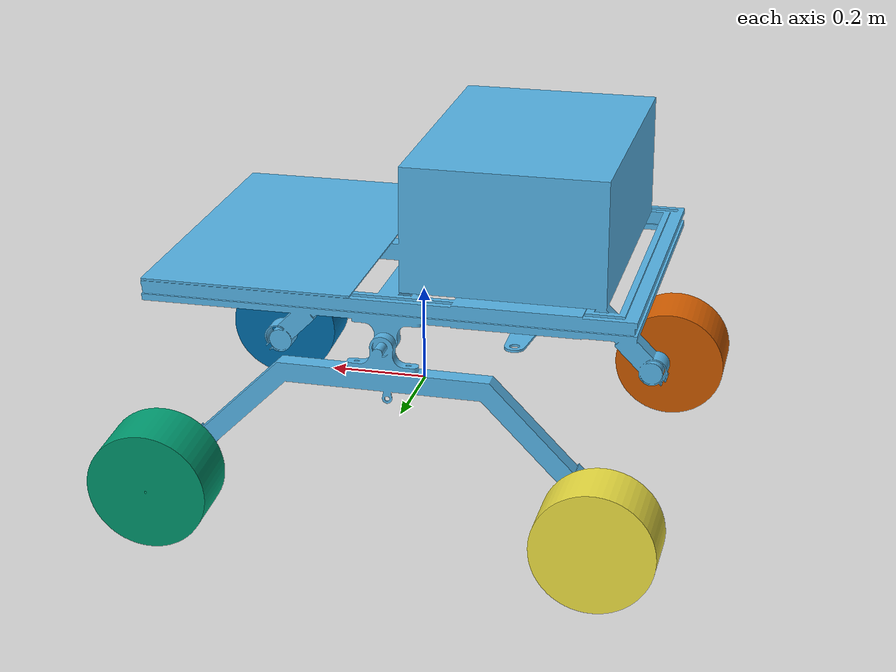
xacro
<?xml version="1.0"?>
<robot xmlns:xacro="http://www.ros.org/wiki/xacro" name="rover">

    <link name="world"/>
    <link name="base">
        <visual>
            <origin rpy="1.57 0 0" xyz="-0.5 0.5 -0.1"/>
            <geometry>
                <mesh filename="package://robot_arm_description/mesh/Body without wheels.STL" scale="0.001 0.001 0.001"/>
            </geometry>
        </visual>
    </link>

    <link name="wheel">
        <visual>
            <origin rpy="0 0 0" xyz="-0.1 -0.1 -0.1"/>
            <geometry>
                <mesh filename="package://robot_arm_description/mesh/temp Wheel.STL" scale="0.001 0.001 0.001"/>
            </geometry>
        </visual>
    </link>

    <link name="wheel2">
        <visual>
            <origin rpy="0 1.57 0" xyz="0 -0.115 0.115"/>
            <geometry>
                <mesh filename="package://robot_arm_description/mesh/temp Wheel.STL" scale="0.001 0.001 0.001"/>
            </geometry>
        </visual>
    </link>

    <link name="wheel3">
        <visual>
            <origin rpy="0 0 0" xyz="-0.1 -0.1 -0.1"/>
            <geometry>
                <mesh filename="package://robot_arm_description/mesh/temp Wheel.STL" scale="0.001 0.001 0.001"/>
            </geometry>
        </visual>
    </link>

    <link name="wheel4">
        <visual>
            <origin rpy="0 0 0" xyz="-0.1 -0.1 -0.1"/>
            <geometry>
                <mesh filename="package://robot_arm_description/mesh/temp Wheel.STL" scale="0.001 0.001 0.001"/>
            </geometry>
        </visual>
    </link>

    <joint name="virtual_joint" type="fixed">
        <parent link="world"/>
        <child link="base"/>
        <origin rpy="0 0 0" xyz="0 0 0.0"/>
    </joint>

    <joint name="wheel_name" type="revolute">
        <parent link="base"/>
        <child link="wheel"/>
        <origin rpy="0 0 0" xyz="0.4 0.45 -0.07"/>
        <axis xyz="1 0 0"/>
        <limit lower="2.5" upper="0.5" effort="30" velocity="10"/>
    </joint>

    <joint name="wheel_name2" type="revolute">
        <parent link="base"/>
        <child link="wheel2"/>
        <origin rpy="1.57 0 1.57" xyz="-0.45 0.45 -0.08"/>
        <axis xyz="1 0 0"/>
        <limit lower="-3.14" upper="3.14" effort="30" velocity="10"/>
    </joint>

    <joint name="wheel_name3" type="revolute">
        <parent link="base"/>
        <child link="wheel3"/>
        <origin rpy="0 0 0" xyz="0.4 -0.45 -0.07"/>
        <axis xyz="1 0 0"/>
        <limit lower="2.5" upper="0.5" effort="30" velocity="10"/>
    </joint>

    <joint name="wheel_name4" type="revolute">
        <parent link="base"/>
        <child link="wheel4"/>
        <origin rpy="0 0 0" xyz="-0.495 -0.45 -0.08"/>
        <axis xyz="1 0 0"/>
        <limit lower="2.5" upper="0.5" effort="30" velocity="10"/>
    </joint>
</robot>
